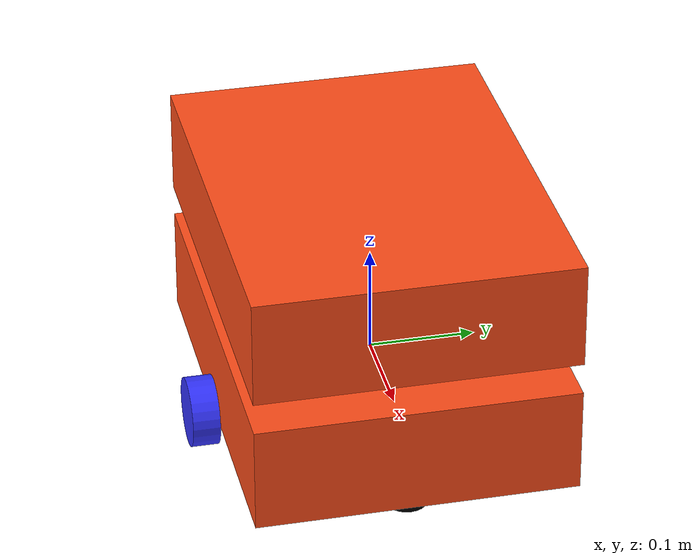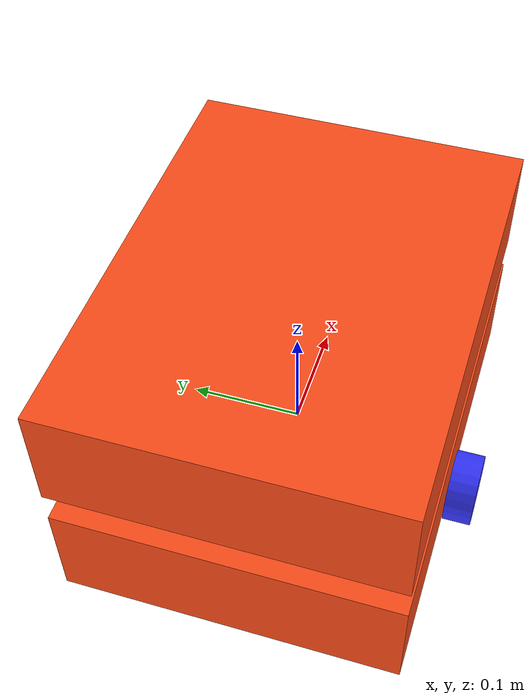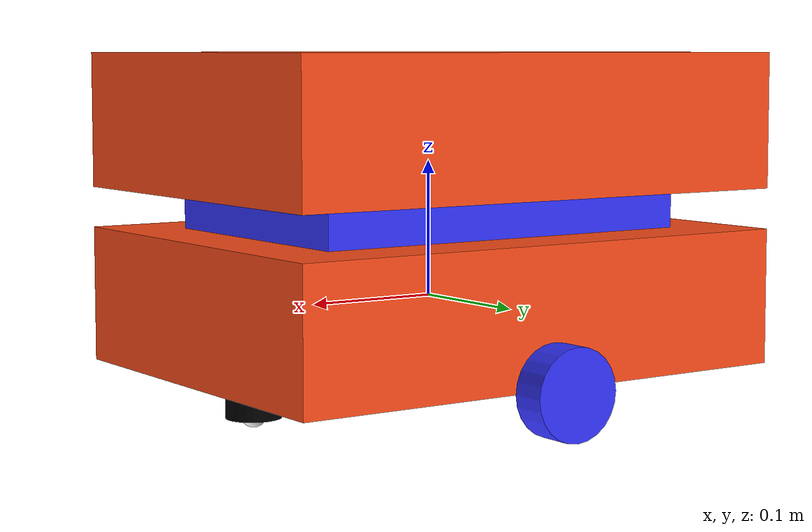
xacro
<?xml version="1.0"?>
<robot xmlns:xacro="http://www.ros.org/wiki/xacro" >

    <xacro:include filename="inertial_macros.xacro"/>
    <xacro:property name="chassis_length" value="0.4"/>
    <xacro:property name="chassis_width" value="0.3"/>
    <xacro:property name="chassis_height" value="0.1"/>
    <xacro:property name="chassis_mass" value="1.0"/>
    <xacro:property name="wheel_radius" value="0.033"/>
    <xacro:property name="wheel_thickness" value="0.026"/>
    <xacro:property name="wheel_mass" value="0.05"/>
    <xacro:property name="wheel_offset_x" value="0.15"/>
    <xacro:property name="wheel_offset_y" value="0.163"/>
    <xacro:property name="wheel_offset_z" value="0.05"/>
    <xacro:property name="caster_wheel_radius" value="0.01"/>
    <xacro:property name="caster_wheel_mass" value="2"/>
    <xacro:property name="caster_wheel_offset_z" value="0.02295"/>

    <material name="white">
        <color rgba="1 1 1 1" />
    </material>

    <material name="orange">
        <color rgba="1 0.3 0.1 1"/>
    </material>

    <material name="blue">
        <color rgba="0.2 0.2 1 1"/>
    </material>

    <material name="black">
        <color rgba="0 0 0 1"/>
    </material>

    <material name="red">
        <color rgba="1 0 0 1"/>
    </material>

    <!-- BASE LINK -->
    <link name="base_link">
    </link>

    <!-- CHASSIS -->
    <joint name="base_to_chassis" type="fixed">
        <parent link="base_link"/>
        <child link="chassis"/>
        <origin xyz="0 0 0" rpy="0 0 0"/>
    </joint>

    <link name="chassis">
        <visual>
            <geometry>
                <box size="${chassis_length} ${chassis_width} ${chassis_height}"/>
            </geometry>
            <material name="orange"/>
        </visual>
        <collision>
            <geometry>
                <box size="${chassis_length} ${chassis_width} ${chassis_height}"/>
            </geometry>
        </collision>
        <xacro:inertial_box mass="${chassis_mass}" x="${chassis_length}" y="${chassis_width}" z="${chassis_height}">
            <origin xyz="0 0 0" rpy="0 0 0"/>
        </xacro:inertial_box>
    </link>

    <gazebo reference="chassis">
        <material>Gazebo/Orange</material>
    </gazebo>

    <!-- LEFT WHEEL -->
    <joint name="left_wheel_joint" type="continuous">
        <parent link="base_link"/>
        <child link="left_wheel"/>
        <origin xyz="0 ${wheel_offset_y} ${-wheel_offset_z}" rpy="-${pi/2} 0 0" />
        <axis xyz="0 0 1"/>
    </joint>

    <link name="left_wheel">
        <visual>
            <geometry>
                <cylinder radius="${wheel_radius}" length="${wheel_thickness}"/>
            </geometry>
            <material name="blue"/>
        </visual>
        <collision>
            <geometry>
                <sphere radius="${wheel_radius}"/>
            </geometry>
        </collision>
        <xacro:inertial_cylinder mass="${wheel_mass}" length="${wheel_thickness}" radius="${wheel_radius}">
            <origin xyz="0 0 0" rpy="0 0 0"/>
        </xacro:inertial_cylinder>
    </link>

    <gazebo reference="left_wheel">
        <material>Gazebo/Blue</material>
    </gazebo>

    <!-- RIGHT WHEEL -->
    <joint name="right_wheel_joint" type="continuous">
        <parent link="base_link"/>
        <child link="right_wheel"/>
        <origin xyz="0 ${-wheel_offset_y} ${-wheel_offset_z}" rpy="${pi/2} 0 0" />
        <axis xyz="0 0 -1"/>
    </joint>

    <link name="right_wheel">
        <visual>
            <geometry>
                <cylinder radius="${wheel_radius}" length="${wheel_thickness}"/>
            </geometry>
            <material name="blue"/>
        </visual>
        <collision>
            <geometry>
                <sphere radius="${wheel_radius}"/>
            </geometry>
        </collision>
        <xacro:inertial_cylinder mass="${wheel_mass}" length="${wheel_thickness}" radius="${wheel_radius}">
            <origin xyz="0 0 0" rpy="0 0 0"/>
        </xacro:inertial_cylinder>
    </link>

    <gazebo reference="right_wheel">
        <material>Gazebo/Blue</material>
    </gazebo>

    <!-- CONNECT CHASSIS TO CASTER WHEEL FRONT -->
    <joint name="connect_caster_wheel_front_joint" type="fixed">
        <parent link="base_link"/>
        <child link="connect_caster_wheel_front"/>
        <origin xyz="${wheel_offset_x} 0 ${-wheel_offset_z}" rpy="0 0 0" />
    </joint>

    <link name="connect_caster_wheel_front">
        <visual>
            <geometry>
                <cylinder radius="0.02" length="0.052"/>
            </geometry>
            <material name="black"/>
        </visual>
        <collision>
            <geometry>
                <cylinder radius="0.02" length="0.052"/>
            </geometry>
        </collision>
        <xacro:inertial_cylinder mass="0" length="0.052" radius="0.02">
            <origin xyz="0 0 0" rpy="0 0 0"/>
        </xacro:inertial_cylinder>
    </link>

    <gazebo reference="connect_caster_wheel_front">
        <material>Gazebo/Black</material>
    </gazebo>

    <!-- CASTER WHEEL FRONT -->
    <joint name="caster_wheel_front_joint" type="fixed">
        <parent link="connect_caster_wheel_front"/>
        <child link="caster_wheel_front"/>
        <origin xyz="0 0 ${-caster_wheel_offset_z}" rpy="0 0 0" />
    </joint>

    <link name="caster_wheel_front">
        <visual>
            <geometry>
                <sphere radius="${caster_wheel_radius}"/>
            </geometry>
            <material name="white"/>
        </visual>
        <collision>
            <geometry>
                <sphere radius="${caster_wheel_radius}"/>
            </geometry>
        </collision>
        <xacro:inertial_sphere mass="${caster_wheel_mass}" radius="${caster_wheel_radius}">
            <origin xyz="0 0 0" rpy="0 0 0"/>
        </xacro:inertial_sphere>
    </link>

    <gazebo reference="caster_wheel_front">
        <material>Gazebo/White</material>
        <mu1 value="0.001"/>
        <mu2 value="0.001"/>
    </gazebo>

    <!-- CONNECT CHASSIS TO CASTER WHEEL REAR -->
    <joint name="connect_caster_wheel_rear_joint" type="fixed">
        <parent link="base_link"/>
        <child link="connect_caster_wheel_rear"/>
        <origin xyz="${-wheel_offset_x} 0 ${-wheel_offset_z}" rpy="0 0 0" />
    </joint>

    <link name="connect_caster_wheel_rear">
        <visual>
            <geometry>
                <cylinder radius="0.02" length="0.052"/>
            </geometry>
            <material name="black"/>
        </visual>
        <collision>
            <geometry>
                <cylinder radius="0.02" length="0.052"/>
            </geometry>
        </collision>
        <xacro:inertial_cylinder mass="0" length="0.052" radius="0.02">
            <origin xyz="0 0 0" rpy="0 0 0"/>
        </xacro:inertial_cylinder>
    </link>

    <gazebo reference="connect_caster_wheel_rear">
        <material>Gazebo/Black</material>
    </gazebo>

    <!-- CASTER WHEEL REAR -->
    <joint name="caster_wheel_rear_joint" type="fixed">
        <parent link="connect_caster_wheel_rear"/>
        <child link="caster_wheel_rear"/>
        <origin xyz="0 0 ${-caster_wheel_offset_z}" rpy="0 0 0" />
    </joint>

    <link name="caster_wheel_rear">
        <visual>
            <geometry>
                <sphere radius="${caster_wheel_radius}"/>
            </geometry>
            <material name="white"/>
        </visual>
        <collision>
            <geometry>
                <sphere radius="${caster_wheel_radius}"/>
            </geometry>
        </collision>
        <xacro:inertial_sphere mass="${caster_wheel_mass}" radius="${caster_wheel_radius}">
            <origin xyz="0 0 0" rpy="0 0 0"/>
        </xacro:inertial_sphere>
    </link>

    <gazebo reference="caster_wheel_rear">
        <material>Gazebo/White</material>
        <mu1 value="0.001"/>
        <mu2 value="0.001"/>
    </gazebo>

    <!-- Connect chassis to cargo -->
    <joint name="chassis_to_cargo_joint" type="fixed">
        <parent link="base_link"/>
        <child link="connect_cargo"/>
        <origin xyz="0 0 0.065"/>
    </joint>

    <link name="connect_cargo">
        <visual>
            <origin xyz="0 0 0"/>
            <geometry>
                <box size="0.3 0.2 0.03"/>
            </geometry>
            <material name="blue"/>
        </visual>
        <collision>
            <origin xyz="0 0 0"/>
            <geometry>
                <box size="0.3 0.2 0.03"/>
            </geometry>
        </collision>
        <xacro:inertial_box mass="0.1" x="0.3" y="0.2" z="0.03">
            <origin xyz="0 0 0" rpy="0 0 0"/>
        </xacro:inertial_box>
    </link>

    <!-- CARGO -->
    <joint name="cargo_joint" type="fixed">
        <parent link="connect_cargo"/>
        <child link="cargo"/>
        <origin xyz="0 0 0.065"/>
    </joint>

    <link name="cargo">
        <visual>
            <origin xyz="0 0 0"/>
            <geometry>
                <box size="0.4 0.3 0.1"/>
            </geometry>
            <material name="orange"/>
        </visual>
        <collision>
            <origin xyz="0 0 0"/>
            <geometry>
                <box size="0.4 0.3 0.1"/>
            </geometry>
        </collision>
        <xacro:inertial_box mass="0.4" x="0.4" y="0.3" z="0.1">
            <origin xyz="0 0 0" rpy="0 0 0"/>
        </xacro:inertial_box>
    </link>

    <gazebo reference="cargo">
        <material>Gazebo/Orange</material>
    </gazebo>
</robot>

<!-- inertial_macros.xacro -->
<robot xmlns:xacro="http://www.ros.org/wiki/xacro" >

    <!-- Specify some standard inertial calculations https://en.wikipedia.org/wiki/List_of_moments_of_inertia -->
    <!-- These make use of xacro's mathematical functionality -->

    <xacro:macro name="inertial_sphere" params="mass radius *origin">
        <inertial>
            <xacro:insert_block name="origin"/>
            <mass value="${mass}" />
            <inertia ixx="${(2/5) * mass * (radius*radius)}" ixy="0.0" ixz="0.0"
                    iyy="${(2/5) * mass * (radius*radius)}" iyz="0.0"
                    izz="${(2/5) * mass * (radius*radius)}" />
        </inertial>
    </xacro:macro>

    <xacro:macro name="inertial_box" params="mass x y z *origin">
        <inertial>
            <xacro:insert_block name="origin"/>
            <mass value="${mass}" />
            <inertia ixx="${(1/12) * mass * (y*y+z*z)}" ixy="0.0" ixz="0.0"
                    iyy="${(1/12) * mass * (x*x+z*z)}" iyz="0.0"
                    izz="${(1/12) * mass * (x*x+y*y)}" />
        </inertial>
    </xacro:macro>

    <xacro:macro name="inertial_cylinder" params="mass length radius *origin">
        <inertial>
            <xacro:insert_block name="origin"/>
            <mass value="${mass}" />
            <inertia ixx="${(1/12) * mass * (3*radius*radius + length*length)}" ixy="0.0" ixz="0.0"
                    iyy="${(1/12) * mass * (3*radius*radius + length*length)}" iyz="0.0"
                    izz="${(1/2) * mass * (radius*radius)}" />
        </inertial>
    </xacro:macro>

</robot>
